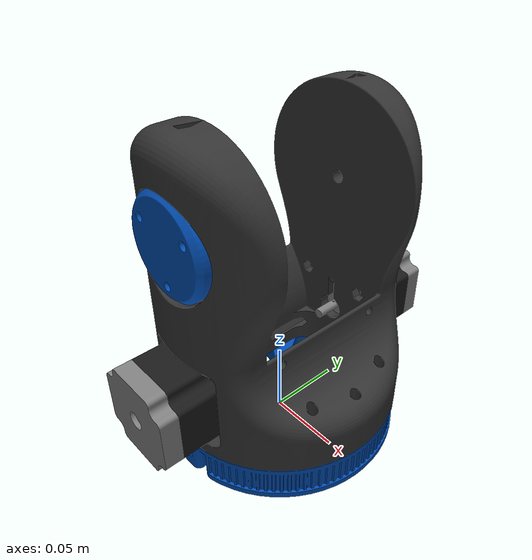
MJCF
<mujoco>
    <compiler meshdir="../meshes/Hip" />

    <include file="materials.xml" />

    <default>

        <default class="visual">
            <geom pos="-0.17077 -0.02583 0.00861" euler="0 90 90" />
        </default>
    </default>

    <asset>
        <mesh name="Hip_body_visual" file="Hip_body.STL" />
        <mesh name="Hip_motors_ends_visual" file="Hip_motors_ends.STL" />
        <mesh name="Hip_motors_mid_visual" file="Hip_motors_mid.STL" />
        <mesh name="Hip_attachments_visual" file="Hip_attachments.STL" />
    </asset>

    <worldbody>
        <body name="Hip">
            <geom type="mesh" mesh="Hip_body_visual" class="visual" material="black" mass="0.1" />
            <geom type="mesh" mesh="Hip_motors_ends_visual" class="visual" material="silver" mass="0.25" />
            <geom type="mesh" mesh="Hip_motors_mid_visual" class="visual" material="deep_black" mass="0.25" />
            <geom type="mesh" mesh="Hip_attachments_visual" class="visual" material="blue" mass="0.01" />
        </body>
    </worldbody>
</mujoco>

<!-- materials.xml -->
<mujoco>

    <default>
        <mesh scale="0.001 0.001 0.001" />
        <geom contype="0" conaffinity="0" mass="0" />
    </default>

    <asset>
        <texture type="skybox" builtin="gradient" rgb1=".3 .5 .7" rgb2="1 1 1" width="32" height="512"/>
        <material name="blue" rgba="0.0 0.3 0.7 1" />
        <material name="black" rgba="0.2 0.2 0.2 1" />
        <material name="deep_black" rgba="0.1 0.1 0.1 1" />
        <material name="silver" rgba="0.5 0.5 0.5 1" />
        <material name="brown" rgba="1 0.7 0.5 1" />
    </asset>
</mujoco>
